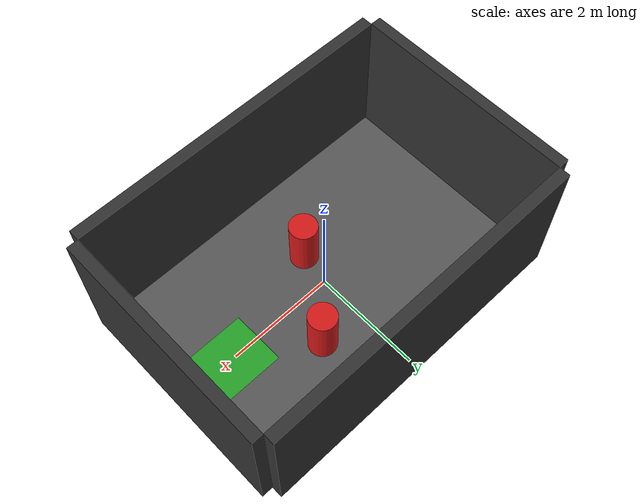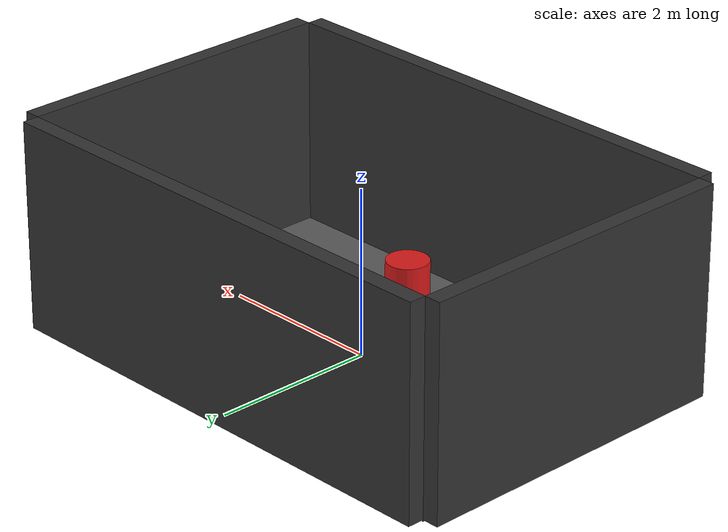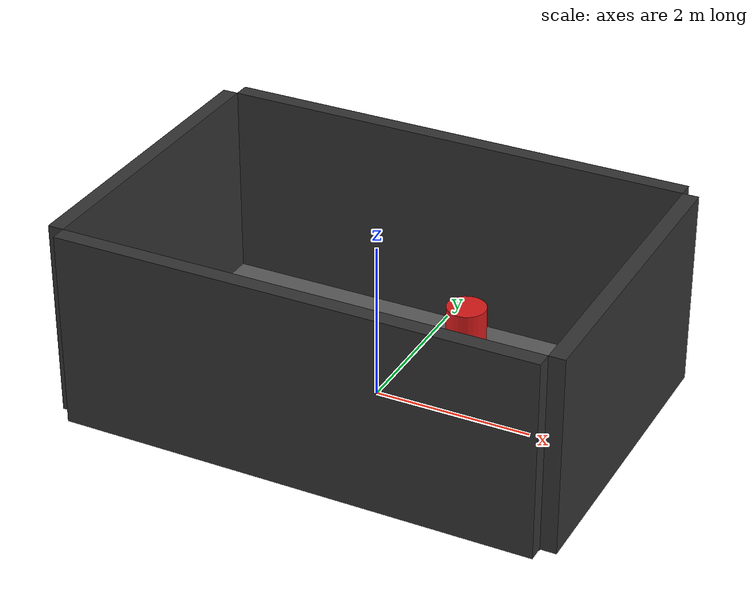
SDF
<?xml version="1.0"?>
<sdf version="1.10">
  <world name="robot_arena">

    <!-- Disable GUI grid and set a neutral background -->
    <scene>
      <grid>false</grid>
      <background>0.85 0.85 0.85 1</background>
    </scene>

    <!-- World level gravity -->
    <gravity>0 0 -9.81</gravity>

    <!-- Enable all sensors in this world -->
    <plugin filename="gz-sim-physics-system" name="gz::sim::systems::Physics"/>
    <plugin filename="gz-sim-user-commands-system" name="gz::sim::systems::UserCommands"/>
    <plugin filename="gz-sim-scene-broadcaster-system" name="gz::sim::systems::SceneBroadcaster"/>
    <plugin filename="gz-sim-sensors-system" name="gz::sim::systems::Sensors"/>

    <!-- Physics engine settings -->
    <physics name="ode-default" type="ode">
      <max_step_size>0.001</max_step_size>
      <real_time_update_rate>1000</real_time_update_rate>
      <real_time_factor>1.0</real_time_factor>
    </physics>

    <!-- Sun only (no infinite ground) -->
    <light type="directional" name="sun">
      <cast_shadows>true</cast_shadows>
      <diffuse> 1 1 1 1</diffuse>
      <specular>0.1 0.1 0.1 1</specular>
      <attenuation>
        <range>1000</range>
        <constant>1</constant>
        <linear>0</linear>
        <quadratic>0</quadratic>
      </attenuation>
      <direction>-0.5 0.5 -1</direction>
    </light>

    <!-- Finite floor: just inside the walls to avoid z-fighting -->
    <model name="floor">
      <pose>0 0 -0.01 0 0 0</pose>  <!-- top surface at z = 0 -->
      <static>true</static>
      <link name="link">
        <collision name="collision">
          <geometry>
            <box><size>6.0 4.0 0.02</size></box>
          </geometry>
          <surface>
            <friction>
              <ode>
                <mu>1.2</mu>
                <mu2>1.2</mu2>
              </ode>
            </friction>
          </surface>
        </collision>
        <visual name="visual">
          <geometry>
            <box><size>6.0 4.0 0.02</size></box>
          </geometry>
          <material>
            <ambient>0.25 0.25 0.25 1</ambient>
            <diffuse>0.35 0.35 0.35 1</diffuse>
          </material>
        </visual>
      </link>
    </model>

    <!-- Left wall -->
    <model name="wall_left">
      <pose>-3.1 0 1.25 0 0 0</pose> <!-- position: x=-3, y=0, z=1.25 -->
      <static>true</static>
      <link name="link">
        <collision name="collision">
          <geometry>
            <box><size>0.2 4.0 2.5</size></box>
          </geometry>
        </collision>
        <visual name="visual">
          <geometry>
            <box><size>0.2 4.0 2.5</size></box>
          </geometry>
          <material>
            <ambient>0.1 0.1 0.1 1</ambient>
            <diffuse>0.2 0.2 0.2 1</diffuse>
          </material>
        </visual>
      </link>
    </model>

    <!-- Right wall -->
    <model name="wall_right">
      <pose>3.1 0 1.25 0 0 0</pose>
      <static>true</static>
      <link name="link">
        <collision name="collision">
          <geometry>
            <box><size>0.2 4.0 2.5</size></box>
          </geometry>
        </collision>
        <visual name="visual">
          <geometry>
            <box><size>0.2 4.0 2.5</size></box>
          </geometry>
          <material>
            <ambient>0.1 0.1 0.1 1</ambient>
            <diffuse>0.2 0.2 0.2 1</diffuse>
          </material>
        </visual>
      </link>
    </model>

    <!-- Back wall (negative Y) -->
    <model name="wall_back">
      <pose>0 -2.1 1.25 0 0 0</pose>
      <static>true</static>
      <link name="link">
        <collision name="collision">
          <geometry>
            <box><size>6.0 0.2 2.5</size></box>
          </geometry>
        </collision>
        <visual name="visual">
          <geometry>
            <box><size>6.0 0.2 2.5</size></box>
          </geometry>
          <material>
            <ambient>0.1 0.1 0.1 1</ambient>
            <diffuse>0.2 0.2 0.2 1</diffuse>
          </material>
        </visual>
      </link>
    </model>

    <!-- Front wall (positive Y) -->
    <model name="wall_front">
      <pose>0 2.1 1.25 0 0 0</pose>
      <static>true</static>
      <link name="link">
        <collision name="collision">
          <geometry>
            <box><size>6.0 0.2 2.5</size></box>
          </geometry>
        </collision>
        <visual name="visual">
          <geometry>
            <box><size>6.0 0.2 2.5</size></box>
          </geometry>
          <material>
            <ambient>0.1 0.1 0.1 1</ambient>
            <diffuse>0.2 0.2 0.2 1</diffuse>
          </material>
        </visual>
      </link>
    </model>

    <!-- Goal region -->
    <model name="goal_region">
      <pose>2.25 0 0.001 0 0 0</pose>
      <static>true</static>
      <link name="link">
        <visual name="goal_visual">
          <geometry>
            <box><size>1.5 1.0 0.002</size></box>
          </geometry>
          <material>
            <ambient>0.05 0.25 0.05 1</ambient>
            <diffuse>0.10 0.85 0.10 1</diffuse>
          </material>
          <transparency>0.35</transparency>
          <cast_shadows>false</cast_shadows>
        </visual>

        <!-- Collision for sensor -->
        <collision name="goal_collision">
          <pose>0 0 -0.00225 0 0 0</pose>
          <geometry>
            <box><size>1.5 1.0 0.0025</size></box>
          </geometry>
          <surface>
            <contact>
              <ode>
                <soft_cfm>1e-9</soft_cfm>
                <soft_erp>0</soft_erp>
              </ode>
            </contact>
            <bounce>
              <restitution_coefficient>0.0</restitution_coefficient>
              <threshold>1e-3</threshold>
            </bounce>
            <friction><ode><mu>0.0</mu><mu2>0.0</mu2></ode></friction>
          </surface>
        </collision>

        <!-- Contact sensor -->
        <sensor name="goal_sensor" type="contact">
          <always_on>true</always_on>
          <update_rate>20</update_rate>
          <contact><collision>goal_collision</collision></contact>
          <visualize>false</visualize>
        </sensor>
      </link>

      <plugin filename="gz-sim-pose-publisher-system"
              name="gz::sim::systems::PosePublisher">
        <publish_model_pose>true</publish_model_pose>
        <publish_link_pose>false</publish_link_pose>
        <publish_sensor_pose>false</publish_sensor_pose>
        <publish_nested_model_pose>false</publish_nested_model_pose>
        <use_pose_vector_msg>false</use_pose_vector_msg>
        <update_frequency>30</update_frequency>
      </plugin>
    </model>

    <!-- Obstacle 1: upper cylinder -->
    <model name="obstacle_upper">
      <pose>0.8 0.8 0.5 0 0 0</pose>
      <static>true</static>
      <link name="link">
        <collision name="collision">
          <geometry>
            <cylinder><radius>0.25</radius><length>1.0</length></cylinder>
          </geometry>
        </collision>
        <visual name="visual">
          <geometry>
            <cylinder><radius>0.25</radius><length>1.0</length></cylinder>
          </geometry>
          <material>
            <ambient>0.25 0.05 0.05 1</ambient>
            <diffuse>0.85 0.10 0.10 1</diffuse>
          </material>
        </visual>
      </link>

      <plugin filename="gz-sim-pose-publisher-system"
              name="gz::sim::systems::PosePublisher">
        <publish_model_pose>true</publish_model_pose>
        <publish_link_pose>false</publish_link_pose>
        <publish_sensor_pose>false</publish_sensor_pose>
        <publish_nested_model_pose>false</publish_nested_model_pose>
        <use_pose_vector_msg>false</use_pose_vector_msg>
        <update_frequency>30</update_frequency>
      </plugin>
    </model>

    <!-- Obstacle 2: lower cylinder -->
    <model name="obstacle_lower">
      <pose>-0.1 -0.6 0.5 0 0 0</pose>
      <static>true</static>
      <link name="link">
        <collision name="collision">
          <geometry>
            <cylinder><radius>0.25</radius><length>1.0</length></cylinder>
          </geometry>
        </collision>
        <visual name="visual">
          <geometry>
            <cylinder><radius>0.25</radius><length>1.0</length></cylinder>
          </geometry>
          <material>
            <ambient>0.25 0.05 0.05 1</ambient>
            <diffuse>0.85 0.10 0.10 1</diffuse>
          </material>
        </visual>
      </link>

      <plugin filename="gz-sim-pose-publisher-system"
              name="gz::sim::systems::PosePublisher">
        <publish_model_pose>true</publish_model_pose>
        <publish_link_pose>false</publish_link_pose>
        <publish_sensor_pose>false</publish_sensor_pose>
        <publish_nested_model_pose>false</publish_nested_model_pose>
        <use_pose_vector_msg>false</use_pose_vector_msg>
        <update_frequency>30</update_frequency>
      </plugin>
    </model>

  </world>
</sdf>
